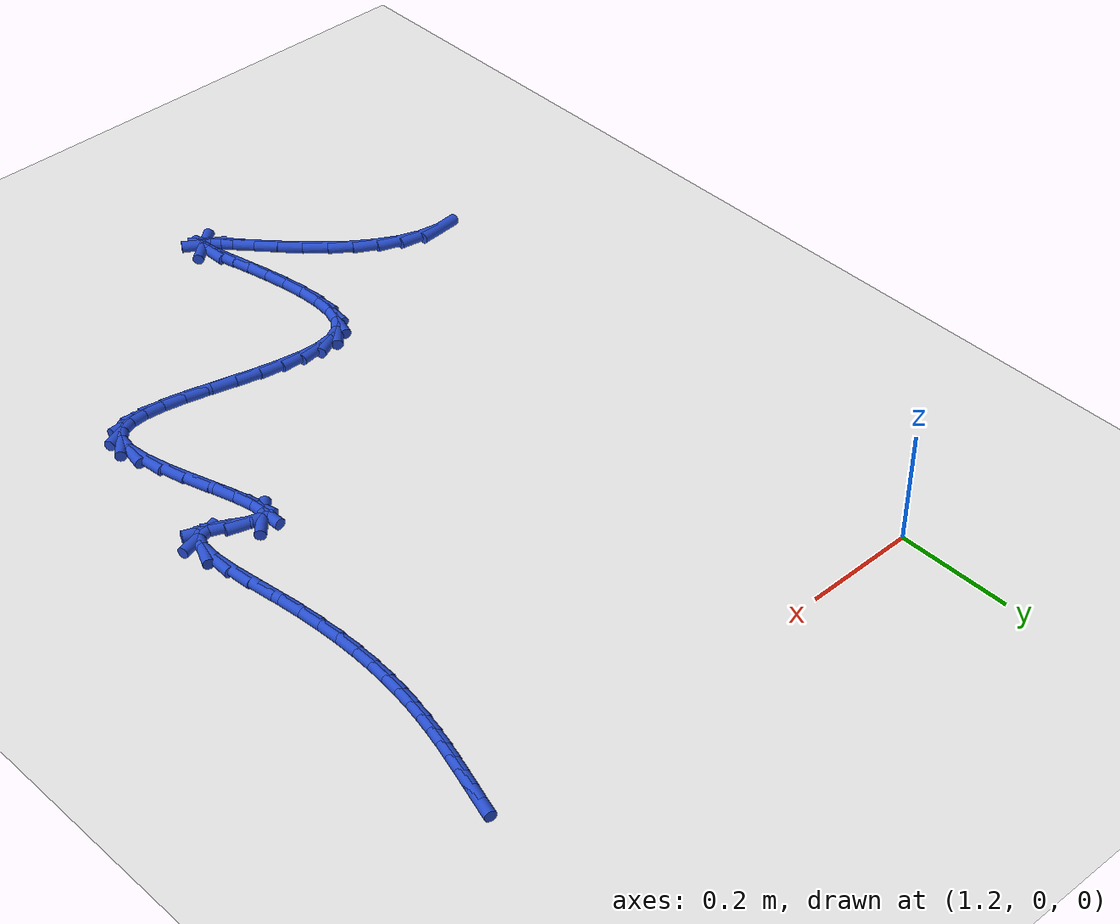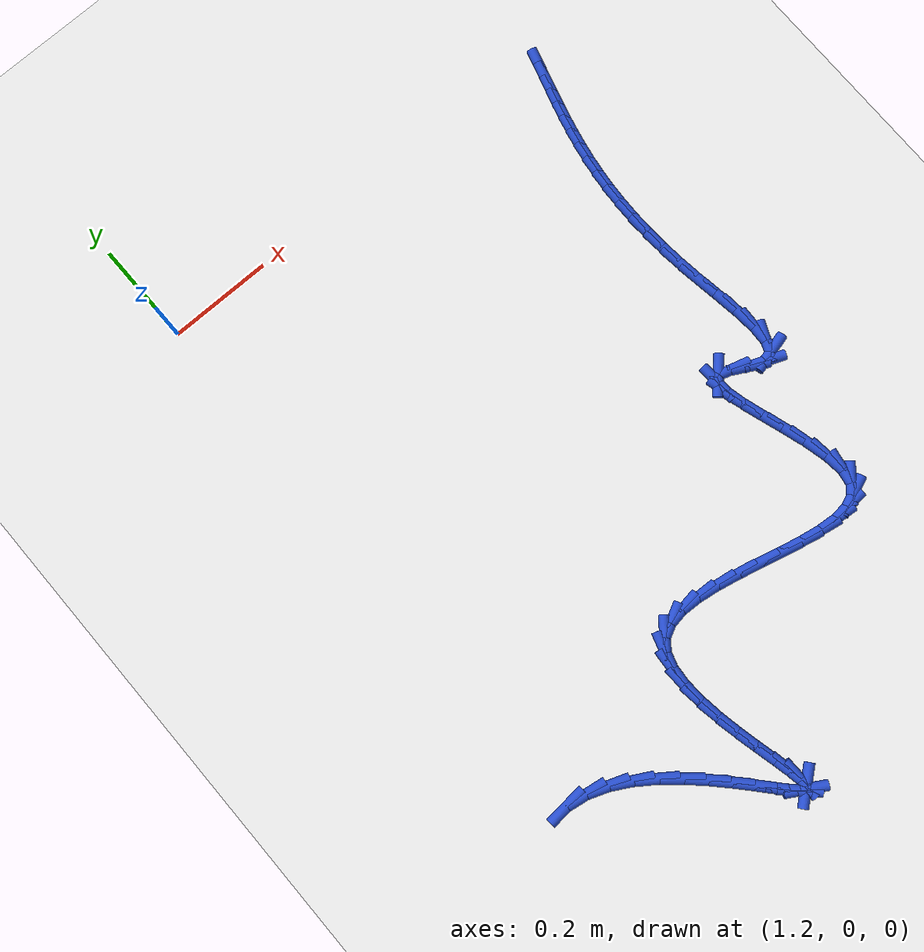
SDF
<sdf version="1.6">
 <world name="default">
  <model name="ground_plane">
   <static>1</static>
   <link name="link">
    <collision name="collision">
     <geometry><plane><normal>0 0 1</normal><size>100 100</size></plane></geometry>
     <surface><friction><ode><mu>100</mu><mu2>50</mu2></ode></friction></surface>
    </collision>
    <visual name="visual">
     <cast_shadows>0</cast_shadows>
     <geometry><plane><normal>0 0 1</normal><size>100 100</size></plane></geometry>
     <material>
      <script><uri>file://media/materials/scripts/gazebo.material</uri><name>Gazebo/WhiteGlow</name></script>
     </material>
    </visual>
   </link>
  </model>
  <model name="line">
   <link name="link_139">
    <pose>2.033391835940656 -0.04655818388977548 0.01 0 1.57 1.2891557442095074</pose>
    <collision name="collision">
     <geometry><cylinder><radius>0.01</radius><length>0.08</length></cylinder></geometry>
    </collision>
    <visual name="visual">
     <material>
      <script><name>Gazebo/Blue</name><uri>file://media/materials/scripts/gazebo.material</uri></script>
     </material>
     <geometry><cylinder><radius>0.01</radius><length>0.08</length></cylinder></geometry>
    </visual>
   </link>
   <link name="link_140">
    <pose>2.0255764674213497 -0.07357000636476695 0.01 0 1.57 1.290283510547208</pose>
    <collision name="collision">
     <geometry><cylinder><radius>0.01</radius><length>0.08</length></cylinder></geometry>
    </collision>
    <visual name="visual">
     <material>
      <script><name>Gazebo/Blue</name><uri>file://media/materials/scripts/gazebo.material</uri></script>
     </material>
     <geometry><cylinder><radius>0.01</radius><length>0.08</length></cylinder></geometry>
    </visual>
   </link>
   <link name="link_141">
    <pose>2.017826408533882 -0.10046969367149312 0.01 0 1.57 1.2983792185208827</pose>
    <collision name="collision">
     <geometry><cylinder><radius>0.01</radius><length>0.08</length></cylinder></geometry>
    </collision>
    <visual name="visual">
     <material>
      <script><name>Gazebo/Blue</name><uri>file://media/materials/scripts/gazebo.material</uri></script>
     </material>
     <geometry><cylinder><radius>0.01</radius><length>0.08</length></cylinder></geometry>
    </visual>
   </link>
   <link name="link_142">
    <pose>2.010281807269411 -0.12747622197752148 0.01 0 1.57 1.3132579747958533</pose>
    <collision name="collision">
     <geometry><cylinder><radius>0.01</radius><length>0.08</length></cylinder></geometry>
    </collision>
    <visual name="visual">
     <material>
      <script><name>Gazebo/Blue</name><uri>file://media/materials/scripts/gazebo.material</uri></script>
     </material>
     <geometry><cylinder><radius>0.01</radius><length>0.08</length></cylinder></geometry>
    </visual>
   </link>
   <link name="link_143">
    <pose>2.003082811619092 -0.1548085674504191 0.01 0 1.57 1.3344805755066462</pose>
    <collision name="collision">
     <geometry><cylinder><radius>0.01</radius><length>0.08</length></cylinder></geometry>
    </collision>
    <visual name="visual">
     <material>
      <script><name>Gazebo/Blue</name><uri>file://media/materials/scripts/gazebo.material</uri></script>
     </material>
     <geometry><cylinder><radius>0.01</radius><length>0.08</length></cylinder></geometry>
    </visual>
   </link>
   <link name="link_144">
    <pose>1.996369569574084 -0.1826857062577532 0.01 0 1.57 1.3613726023500343</pose>
    <collision name="collision">
     <geometry><cylinder><radius>0.01</radius><length>0.08</length></cylinder></geometry>
    </collision>
    <visual name="visual">
     <material>
      <script><name>Gazebo/Blue</name><uri>file://media/materials/scripts/gazebo.material</uri></script>
     </material>
     <geometry><cylinder><radius>0.01</radius><length>0.08</length></cylinder></geometry>
    </visual>
   </link>
   <link name="link_145">
    <pose>1.9902822291255415 -0.21132661456709073 0.01 0 1.57 1.3930619994792948</pose>
    <collision name="collision">
     <geometry><cylinder><radius>0.01</radius><length>0.08</length></cylinder></geometry>
    </collision>
    <visual name="visual">
     <material>
      <script><name>Gazebo/Blue</name><uri>file://media/materials/scripts/gazebo.material</uri></script>
     </material>
     <geometry><cylinder><radius>0.01</radius><length>0.08</length></cylinder></geometry>
    </visual>
   </link>
   <link name="link_146">
    <pose>1.9849609382646225 -0.24095026854599977 0.01 0 1.57 1.4285346954058564</pose>
    <collision name="collision">
     <geometry><cylinder><radius>0.01</radius><length>0.08</length></cylinder></geometry>
    </collision>
    <visual name="visual">
     <material>
      <script><name>Gazebo/Blue</name><uri>file://media/materials/scripts/gazebo.material</uri></script>
     </material>
     <geometry><cylinder><radius>0.01</radius><length>0.08</length></cylinder></geometry>
    </visual>
   </link>
   <link name="link_147">
    <pose>1.980545844982484 -0.2717756443620456 0.01 0 1.57 1.4667039067783092</pose>
    <collision name="collision">
     <geometry><cylinder><radius>0.01</radius><length>0.08</length></cylinder></geometry>
    </collision>
    <visual name="visual">
     <material>
      <script><name>Gazebo/Blue</name><uri>file://media/materials/scripts/gazebo.material</uri></script>
     </material>
     <geometry><cylinder><radius>0.01</radius><length>0.08</length></cylinder></geometry>
    </visual>
   </link>
   <link name="link_148">
    <pose>1.977177097270282 -0.3040217181827961 0.01 0 1.57 1.5064847838088369</pose>
    <collision name="collision">
     <geometry><cylinder><radius>0.01</radius><length>0.08</length></cylinder></geometry>
    </collision>
    <visual name="visual">
     <material>
      <script><name>Gazebo/Blue</name><uri>file://media/materials/scripts/gazebo.material</uri></script>
     </material>
     <geometry><cylinder><radius>0.01</radius><length>0.08</length></cylinder></geometry>
    </visual>
   </link>
   <link name="link_149">
    <pose>1.974994843119174 -0.3379074661758185 0.01 0 1.57 1.5468639267818551</pose>
    <collision name="collision">
     <geometry><cylinder><radius>0.01</radius><length>0.08</length></cylinder></geometry>
    </collision>
    <visual name="visual">
     <material>
      <script><name>Gazebo/Blue</name><uri>file://media/materials/scripts/gazebo.material</uri></script>
     </material>
     <geometry><cylinder><radius>0.01</radius><length>0.08</length></cylinder></geometry>
    </visual>
   </link>
   <link name="link_150">
    <pose>1.9741392305203167 -0.37365186450867993 0.01 0 1.57 -1.5546384463508158</pose>
    <collision name="collision">
     <geometry><cylinder><radius>0.01</radius><length>0.08</length></cylinder></geometry>
    </collision>
    <visual name="visual">
     <material>
      <script><name>Gazebo/Blue</name><uri>file://media/materials/scripts/gazebo.material</uri></script>
     </material>
     <geometry><cylinder><radius>0.01</radius><length>0.08</length></cylinder></geometry>
    </visual>
   </link>
   <link name="link_151">
    <pose>1.974750407464866 -0.41147388934894724 0.01 0 1.57 -1.5155636681429208</pose>
    <collision name="collision">
     <geometry><cylinder><radius>0.01</radius><length>0.08</length></cylinder></geometry>
    </collision>
    <visual name="visual">
     <material>
      <script><name>Gazebo/Blue</name><uri>file://media/materials/scripts/gazebo.material</uri></script>
     </material>
     <geometry><cylinder><radius>0.01</radius><length>0.08</length></cylinder></geometry>
    </visual>
   </link>
   <link name="link_152">
    <pose>1.9769685219439803 -0.4515925168641878 0.01 0 1.57 -1.4780579746204354</pose>
    <collision name="collision">
     <geometry><cylinder><radius>0.01</radius><length>0.08</length></cylinder></geometry>
    </collision>
    <visual name="visual">
     <material>
      <script><name>Gazebo/Blue</name><uri>file://media/materials/scripts/gazebo.material</uri></script>
     </material>
     <geometry><cylinder><radius>0.01</radius><length>0.08</length></cylinder></geometry>
    </visual>
   </link>
   <link name="link_153">
    <pose>1.9809337219488155 -0.4942267232219685 0.01 0 1.57 -1.4425613910180328</pose>
    <collision name="collision">
     <geometry><cylinder><radius>0.01</radius><length>0.08</length></cylinder></geometry>
    </collision>
    <visual name="visual">
     <material>
      <script><name>Gazebo/Blue</name><uri>file://media/materials/scripts/gazebo.material</uri></script>
     </material>
     <geometry><cylinder><radius>0.01</radius><length>0.08</length></cylinder></geometry>
    </visual>
   </link>
   <link name="link_154">
    <pose>1.9867830442494754 -0.5395905282412937 0.01 0 1.57 -1.4195198672755824</pose>
    <collision name="collision">
     <geometry><cylinder><radius>0.01</radius><length>0.08</length></cylinder></geometry>
    </collision>
    <visual name="visual">
     <material>
      <script><name>Gazebo/Blue</name><uri>file://media/materials/scripts/gazebo.material</uri></script>
     </material>
     <geometry><cylinder><radius>0.01</radius><length>0.08</length></cylinder></geometry>
    </visual>
   </link>
   <link name="link_155">
    <pose>1.9939846445289313 -0.5868323868846314 0.01 0 1.57 -1.4295342508097129</pose>
    <collision name="collision">
     <geometry><cylinder><radius>0.01</radius><length>0.08</length></cylinder></geometry>
    </collision>
    <visual name="visual">
     <material>
      <script><name>Gazebo/Blue</name><uri>file://media/materials/scripts/gazebo.material</uri></script>
     </material>
     <geometry><cylinder><radius>0.01</radius><length>0.08</length></cylinder></geometry>
    </visual>
   </link>
   <link name="link_156">
    <pose>2.0005097221185504 -0.632716019203072 0.01 0 1.57 -1.4827428013352417</pose>
    <collision name="collision">
     <geometry><cylinder><radius>0.01</radius><length>0.08</length></cylinder></geometry>
    </collision>
    <visual name="visual">
     <material>
      <script><name>Gazebo/Blue</name><uri>file://media/materials/scripts/gazebo.material</uri></script>
     </material>
     <geometry><cylinder><radius>0.01</radius><length>0.08</length></cylinder></geometry>
    </visual>
   </link>
   <link name="link_157">
    <pose>2.0041262143935894 -0.6736813376214135 0.01 0 1.57 1.5239147201574847</pose>
    <collision name="collision">
     <geometry><cylinder><radius>0.01</radius><length>0.08</length></cylinder></geometry>
    </collision>
    <visual name="visual">
     <material>
      <script><name>Gazebo/Blue</name><uri>file://media/materials/scripts/gazebo.material</uri></script>
     </material>
     <geometry><cylinder><radius>0.01</radius><length>0.08</length></cylinder></geometry>
    </visual>
   </link>
   <link name="link_158">
    <pose>2.002602058729308 -0.706168254564453 0.01 0 1.57 1.160412149462732</pose>
    <collision name="collision">
     <geometry><cylinder><radius>0.01</radius><length>0.08</length></cylinder></geometry>
    </collision>
    <visual name="visual">
     <material>
      <script><name>Gazebo/Blue</name><uri>file://media/materials/scripts/gazebo.material</uri></script>
     </material>
     <geometry><cylinder><radius>0.01</radius><length>0.08</length></cylinder></geometry>
    </visual>
   </link>
   <link name="link_159">
    <pose>1.9937051925009661 -0.7266166824569877 0.01 0 1.57 0.25636298657787354</pose>
    <collision name="collision">
     <geometry><cylinder><radius>0.01</radius><length>0.08</length></cylinder></geometry>
    </collision>
    <visual name="visual">
     <material>
      <script><name>Gazebo/Blue</name><uri>file://media/materials/scripts/gazebo.material</uri></script>
     </material>
     <geometry><cylinder><radius>0.01</radius><length>0.08</length></cylinder></geometry>
    </visual>
   </link>
   <link name="link_160">
    <pose>1.9752035530838208 -0.7314665337238143 0.01 0 1.57 -0.3904399336066739</pose>
    <collision name="collision">
     <geometry><cylinder><radius>0.01</radius><length>0.08</length></cylinder></geometry>
    </collision>
    <visual name="visual">
     <material>
      <script><name>Gazebo/Blue</name><uri>file://media/materials/scripts/gazebo.material</uri></script>
     </material>
     <geometry><cylinder><radius>0.01</radius><length>0.08</length></cylinder></geometry>
    </visual>
   </link>
   <link name="link_161">
    <pose>1.9465937762692913 -0.7196916286025419 0.01 0 1.57 -0.49978428906986494</pose>
    <collision name="collision">
     <geometry><cylinder><radius>0.01</radius><length>0.08</length></cylinder></geometry>
    </collision>
    <visual name="visual">
     <material>
      <script><name>Gazebo/Blue</name><uri>file://media/materials/scripts/gazebo.material</uri></script>
     </material>
     <geometry><cylinder><radius>0.01</radius><length>0.08</length></cylinder></geometry>
    </visual>
   </link>
   <link name="link_162">
    <pose>1.9160813813752349 -0.7030311764826646 0.01 0 1.57 -0.28030339259964454</pose>
    <collision name="collision">
     <geometry><cylinder><radius>0.01</radius><length>0.08</length></cylinder></geometry>
    </collision>
    <visual name="visual">
     <material>
      <script><name>Gazebo/Blue</name><uri>file://media/materials/scripts/gazebo.material</uri></script>
     </material>
     <geometry><cylinder><radius>0.01</radius><length>0.08</length></cylinder></geometry>
    </visual>
   </link>
   <link name="link_163">
    <pose>1.8942577342866598 -0.6967485231153041 0.01 0 1.57 0.8106238926801275</pose>
    <collision name="collision">
     <geometry><cylinder><radius>0.01</radius><length>0.08</length></cylinder></geometry>
    </collision>
    <visual name="visual">
     <material>
      <script><name>Gazebo/Blue</name><uri>file://media/materials/scripts/gazebo.material</uri></script>
     </material>
     <geometry><cylinder><radius>0.01</radius><length>0.08</length></cylinder></geometry>
    </visual>
   </link>
   <link name="link_164">
    <pose>1.8848783399363769 -0.70661347308233 0.01 0 1.57 -1.5447962421317014</pose>
    <collision name="collision">
     <geometry><cylinder><radius>0.01</radius><length>0.08</length></cylinder></geometry>
    </collision>
    <visual name="visual">
     <material>
      <script><name>Gazebo/Blue</name><uri>file://media/materials/scripts/gazebo.material</uri></script>
     </material>
     <geometry><cylinder><radius>0.01</radius><length>0.08</length></cylinder></geometry>
    </visual>
   </link>
   <link name="link_165">
    <pose>1.8854802796561374 -0.7297597083148779 0.01 0 1.57 -1.337679545960382</pose>
    <collision name="collision">
     <geometry><cylinder><radius>0.01</radius><length>0.08</length></cylinder></geometry>
    </collision>
    <visual name="visual">
     <material>
      <script><name>Gazebo/Blue</name><uri>file://media/materials/scripts/gazebo.material</uri></script>
     </material>
     <geometry><cylinder><radius>0.01</radius><length>0.08</length></cylinder></geometry>
    </visual>
   </link>
   <link name="link_166">
    <pose>1.8933741475449515 -0.7630063661510706 0.01 0 1.57 -1.2691719798764611</pose>
    <collision name="collision">
     <geometry><cylinder><radius>0.01</radius><length>0.08</length></cylinder></geometry>
    </collision>
    <visual name="visual">
     <material>
      <script><name>Gazebo/Blue</name><uri>file://media/materials/scripts/gazebo.material</uri></script>
     </material>
     <geometry><cylinder><radius>0.01</radius><length>0.08</length></cylinder></geometry>
    </visual>
   </link>
   <link name="link_167">
    <pose>1.9058705377018283 -0.8031725839290305 0.01 0 1.57 -1.253674645752367</pose>
    <collision name="collision">
     <geometry><cylinder><radius>0.01</radius><length>0.08</length></cylinder></geometry>
    </collision>
    <visual name="visual">
     <material>
      <script><name>Gazebo/Blue</name><uri>file://media/materials/scripts/gazebo.material</uri></script>
     </material>
     <geometry><cylinder><radius>0.01</radius><length>0.08</length></cylinder></geometry>
    </visual>
   </link>
   <link name="link_168">
    <pose>1.9202800442257777 -0.8470774989868798 0.01 0 1.57 -1.273276256946485</pose>
    <collision name="collision">
     <geometry><cylinder><radius>0.01</radius><length>0.08</length></cylinder></geometry>
    </collision>
    <visual name="visual">
     <material>
      <script><name>Gazebo/Blue</name><uri>file://media/materials/scripts/gazebo.material</uri></script>
     </material>
     <geometry><cylinder><radius>0.01</radius><length>0.08</length></cylinder></geometry>
    </visual>
   </link>
   <link name="link_169">
    <pose>1.9339132612158094 -0.8915402486627413 0.01 0 1.57 -1.3324060833883455</pose>
    <collision name="collision">
     <geometry><cylinder><radius>0.01</radius><length>0.08</length></cylinder></geometry>
    </collision>
    <visual name="visual">
     <material>
      <script><name>Gazebo/Blue</name><uri>file://media/materials/scripts/gazebo.material</uri></script>
     </material>
     <geometry><cylinder><radius>0.01</radius><length>0.08</length></cylinder></geometry>
    </visual>
   </link>
   <link name="link_170">
    <pose>1.944080782770933 -0.9333799702947374 0.01 0 1.57 -1.4599077837427716</pose>
    <collision name="collision">
     <geometry><cylinder><radius>0.01</radius><length>0.08</length></cylinder></geometry>
    </collision>
    <visual name="visual">
     <material>
      <script><name>Gazebo/Blue</name><uri>file://media/materials/scripts/gazebo.material</uri></script>
     </material>
     <geometry><cylinder><radius>0.01</radius><length>0.08</length></cylinder></geometry>
    </visual>
   </link>
   <link name="link_171">
    <pose>1.9480932029901585 -0.9694158012209905 0.01 0 1.57 1.3985007052232998</pose>
    <collision name="collision">
     <geometry><cylinder><radius>0.01</radius><length>0.08</length></cylinder></geometry>
    </collision>
    <visual name="visual">
     <material>
      <script><name>Gazebo/Blue</name><uri>file://media/materials/scripts/gazebo.material</uri></script>
     </material>
     <geometry><cylinder><radius>0.01</radius><length>0.08</length></cylinder></geometry>
    </visual>
   </link>
   <link name="link_172">
    <pose>1.9433650007198633 -0.9965860948060805 0.01 0 1.57 0.8961139991353118</pose>
    <collision name="collision">
     <geometry><cylinder><radius>0.01</radius><length>0.08</length></cylinder></geometry>
    </collision>
    <visual name="visual">
     <material>
      <script><name>Gazebo/Blue</name><uri>file://media/materials/scripts/gazebo.material</uri></script>
     </material>
     <geometry><cylinder><radius>0.01</radius><length>0.08</length></cylinder></geometry>
    </visual>
   </link>
   <link name="link_173">
    <pose>1.9293239067214156 -1.0141395714284678 0.01 0 1.57 0.39746737122572867</pose>
    <collision name="collision">
     <geometry><cylinder><radius>0.01</radius><length>0.08</length></cylinder></geometry>
    </collision>
    <visual name="visual">
     <material>
      <script><name>Gazebo/Blue</name><uri>file://media/materials/scripts/gazebo.material</uri></script>
     </material>
     <geometry><cylinder><radius>0.01</radius><length>0.08</length></cylinder></geometry>
    </visual>
   </link>
   <link name="link_174">
    <pose>1.9072217829718872 -1.0234182874065196 0.01 0 1.57 0.08375782046588635</pose>
    <collision name="collision">
     <geometry><cylinder><radius>0.01</radius><length>0.08</length></cylinder></geometry>
    </collision>
    <visual name="visual">
     <material>
      <script><name>Gazebo/Blue</name><uri>file://media/materials/scripts/gazebo.material</uri></script>
     </material>
     <geometry><cylinder><radius>0.01</radius><length>0.08</length></cylinder></geometry>
    </visual>
   </link>
   <link name="link_175">
    <pose>1.8783764366331903 -1.0258399764135606 0.01 0 1.57 -0.08782535281016143</pose>
    <collision name="collision">
     <geometry><cylinder><radius>0.01</radius><length>0.08</length></cylinder></geometry>
    </collision>
    <visual name="visual">
     <material>
      <script><name>Gazebo/Blue</name><uri>file://media/materials/scripts/gazebo.material</uri></script>
     </material>
     <geometry><cylinder><radius>0.01</radius><length>0.08</length></cylinder></geometry>
    </visual>
   </link>
   <link name="link_176">
    <pose>1.8441056748672375 -1.022822372122915 0.01 0 1.57 -0.18139866266339555</pose>
    <collision name="collision">
     <geometry><cylinder><radius>0.01</radius><length>0.08</length></cylinder></geometry>
    </collision>
    <visual name="visual">
     <material>
      <script><name>Gazebo/Blue</name><uri>file://media/materials/scripts/gazebo.material</uri></script>
     </material>
     <geometry><cylinder><radius>0.01</radius><length>0.08</length></cylinder></geometry>
    </visual>
   </link>
   <link name="link_177">
    <pose>1.8057273048359428 -1.0157832082079068 0.01 0 1.57 -0.2300860280375042</pose>
    <collision name="collision">
     <geometry><cylinder><radius>0.01</radius><length>0.08</length></cylinder></geometry>
    </collision>
    <visual name="visual">
     <material>
      <script><name>Gazebo/Blue</name><uri>file://media/materials/scripts/gazebo.material</uri></script>
     </material>
     <geometry><cylinder><radius>0.01</radius><length>0.08</length></cylinder></geometry>
    </visual>
   </link>
   <link name="link_178">
    <pose>1.76455913370122 -1.0061402183418604 0.01 0 1.57 -0.24870632907864465</pose>
    <collision name="collision">
     <geometry><cylinder><radius>0.01</radius><length>0.08</length></cylinder></geometry>
    </collision>
    <visual name="visual">
     <material>
      <script><name>Gazebo/Blue</name><uri>file://media/materials/scripts/gazebo.material</uri></script>
     </material>
     <geometry><cylinder><radius>0.01</radius><length>0.08</length></cylinder></geometry>
    </visual>
   </link>
   <link name="link_179">
    <pose>1.7219189686249798 -0.9953111361980987 0.01 0 1.57 -0.2427528975757483</pose>
    <collision name="collision">
     <geometry><cylinder><radius>0.01</radius><length>0.08</length></cylinder></geometry>
    </collision>
    <visual name="visual">
     <material>
      <script><name>Gazebo/Blue</name><uri>file://media/materials/scripts/gazebo.material</uri></script>
     </material>
     <geometry><cylinder><radius>0.01</radius><length>0.08</length></cylinder></geometry>
    </visual>
   </link>
   <link name="link_180">
    <pose>1.6791246167691378 -0.984713695449947 0.01 0 1.57 -0.2117178059174256</pose>
    <collision name="collision">
     <geometry><cylinder><radius>0.01</radius><length>0.08</length></cylinder></geometry>
    </collision>
    <visual name="visual">
     <material>
      <script><name>Gazebo/Blue</name><uri>file://media/materials/scripts/gazebo.material</uri></script>
     </material>
     <geometry><cylinder><radius>0.01</radius><length>0.08</length></cylinder></geometry>
    </visual>
   </link>
   <link name="link_181">
    <pose>1.6374938852956045 -0.9757656297707287 0.01 0 1.57 -0.14910381315708854</pose>
    <collision name="collision">
     <geometry><cylinder><radius>0.01</radius><length>0.08</length></cylinder></geometry>
    </collision>
    <visual name="visual">
     <material>
      <script><name>Gazebo/Blue</name><uri>file://media/materials/scripts/gazebo.material</uri></script>
     </material>
     <geometry><cylinder><radius>0.01</radius><length>0.08</length></cylinder></geometry>
    </visual>
   </link>
   <link name="link_182">
    <pose>1.5983445813662962 -0.9698846728337679 0.01 0 1.57 -0.03947345384149524</pose>
    <collision name="collision">
     <geometry><cylinder><radius>0.01</radius><length>0.08</length></cylinder></geometry>
    </collision>
    <visual name="visual">
     <material>
      <script><name>Gazebo/Blue</name><uri>file://media/materials/scripts/gazebo.material</uri></script>
     </material>
     <geometry><cylinder><radius>0.01</radius><length>0.08</length></cylinder></geometry>
    </visual>
   </link>
   <link name="link_183">
    <pose>1.5629945121431243 -0.9684885583123892 0.01 0 1.57 0.1479681277248736</pose>
    <collision name="collision">
     <geometry><cylinder><radius>0.01</radius><length>0.08</length></cylinder></geometry>
    </collision>
    <visual name="visual">
     <material>
      <script><name>Gazebo/Blue</name><uri>file://media/materials/scripts/gazebo.material</uri></script>
     </material>
     <geometry><cylinder><radius>0.01</radius><length>0.08</length></cylinder></geometry>
    </visual>
   </link>
   <link name="link_184">
    <pose>1.5327614847880024 -0.9729950198799163 0.01 0 1.57 0.4612136176419111</pose>
    <collision name="collision">
     <geometry><cylinder><radius>0.01</radius><length>0.08</length></cylinder></geometry>
    </collision>
    <visual name="visual">
     <material>
      <script><name>Gazebo/Blue</name><uri>file://media/materials/scripts/gazebo.material</uri></script>
     </material>
     <geometry><cylinder><radius>0.01</radius><length>0.08</length></cylinder></geometry>
    </visual>
   </link>
   <link name="link_185">
    <pose>1.508963306462844 -0.9848217912096733 0.01 0 1.57 0.9003860367007951</pose>
    <collision name="collision">
     <geometry><cylinder><radius>0.01</radius><length>0.08</length></cylinder></geometry>
    </collision>
    <visual name="visual">
     <material>
      <script><name>Gazebo/Blue</name><uri>file://media/materials/scripts/gazebo.material</uri></script>
     </material>
     <geometry><cylinder><radius>0.01</radius><length>0.08</length></cylinder></geometry>
    </visual>
   </link>
   <link name="link_186">
    <pose>1.4927885602343554 -1.005220698034318 0.01 0 1.57 1.2679014491670753</pose>
    <collision name="collision">
     <geometry><cylinder><radius>0.01</radius><length>0.08</length></cylinder></geometry>
    </collision>
    <visual name="visual">
     <material>
      <script><name>Gazebo/Blue</name><uri>file://media/materials/scripts/gazebo.material</uri></script>
     </material>
     <geometry><cylinder><radius>0.01</radius><length>0.08</length></cylinder></geometry>
    </visual>
   </link>
   <link name="link_187">
    <pose>1.4839398109273603 -1.0335357003288772 0.01 0 1.57 1.4903026482610557</pose>
    <collision name="collision">
     <geometry><cylinder><radius>0.01</radius><length>0.08</length></cylinder></geometry>
    </collision>
    <visual name="visual">
     <material>
      <script><name>Gazebo/Blue</name><uri>file://media/materials/scripts/gazebo.material</uri></script>
     </material>
     <geometry><cylinder><radius>0.01</radius><length>0.08</length></cylinder></geometry>
    </visual>
   </link>
   <link name="link_188">
    <pose>1.4811685442165512 -1.0678896887085376 0.01 0 1.57 -1.5177965293139026</pose>
    <collision name="collision">
     <geometry><cylinder><radius>0.01</radius><length>0.08</length></cylinder></geometry>
    </collision>
    <visual name="visual">
     <material>
      <script><name>Gazebo/Blue</name><uri>file://media/materials/scripts/gazebo.material</uri></script>
     </material>
     <geometry><cylinder><radius>0.01</radius><length>0.08</length></cylinder></geometry>
    </visual>
   </link>
   <link name="link_189">
    <pose>1.4832107342971357 -1.106385638945097 0.01 0 1.57 -1.434400118756552</pose>
    <collision name="collision">
     <geometry><cylinder><radius>0.01</radius><length>0.08</length></cylinder></geometry>
    </collision>
    <visual name="visual">
     <material>
      <script><name>Gazebo/Blue</name><uri>file://media/materials/scripts/gazebo.material</uri></script>
     </material>
     <geometry><cylinder><radius>0.01</radius><length>0.08</length></cylinder></geometry>
    </visual>
   </link>
   <link name="link_190">
    <pose>1.4888023553643215 -1.1471265268103537 0.01 0 1.57 -1.3813870108702637</pose>
    <collision name="collision">
     <geometry><cylinder><radius>0.01</radius><length>0.08</length></cylinder></geometry>
    </collision>
    <visual name="visual">
     <material>
      <script><name>Gazebo/Blue</name><uri>file://media/materials/scripts/gazebo.material</uri></script>
     </material>
     <geometry><cylinder><radius>0.01</radius><length>0.08</length></cylinder></geometry>
    </visual>
   </link>
   <link name="link_191">
    <pose>1.4966793816133146 -1.1882153280761016 0.01 0 1.57 -1.3494343353293499</pose>
    <collision name="collision">
     <geometry><cylinder><radius>0.01</radius><length>0.08</length></cylinder></geometry>
    </collision>
    <visual name="visual">
     <material>
      <script><name>Gazebo/Blue</name><uri>file://media/materials/scripts/gazebo.material</uri></script>
     </material>
     <geometry><cylinder><radius>0.01</radius><length>0.08</length></cylinder></geometry>
    </visual>
   </link>
   <link name="link_192">
    <pose>1.5055777872393221 -1.2277550185141397 0.01 0 1.57 -1.3354267175433854</pose>
    <collision name="collision">
     <geometry><cylinder><radius>0.01</radius><length>0.08</length></cylinder></geometry>
    </collision>
    <visual name="visual">
     <material>
      <script><name>Gazebo/Blue</name><uri>file://media/materials/scripts/gazebo.material</uri></script>
     </material>
     <geometry><cylinder><radius>0.01</radius><length>0.08</length></cylinder></geometry>
    </visual>
   </link>
   <link name="link_193">
    <pose>1.5142335464375518 -1.2638485738962646 0.01 0 1.57 -1.3423665724738654</pose>
    <collision name="collision">
     <geometry><cylinder><radius>0.01</radius><length>0.08</length></cylinder></geometry>
    </collision>
    <visual name="visual">
     <material>
      <script><name>Gazebo/Blue</name><uri>file://media/materials/scripts/gazebo.material</uri></script>
     </material>
     <geometry><cylinder><radius>0.01</radius><length>0.08</length></cylinder></geometry>
    </visual>
   </link>
   <link name="link_194">
    <pose>1.5213826334032108 -1.2945989699942733 0.01 0 1.57 -1.3866721538831401</pose>
    <collision name="collision">
     <geometry><cylinder><radius>0.01</radius><length>0.08</length></cylinder></geometry>
    </collision>
    <visual name="visual">
     <material>
      <script><name>Gazebo/Blue</name><uri>file://media/materials/scripts/gazebo.material</uri></script>
     </material>
     <geometry><cylinder><radius>0.01</radius><length>0.08</length></cylinder></geometry>
    </visual>
   </link>
   <link name="link_195">
    <pose>1.525761022331506 -1.318109182579964 0.01 0 1.57 -1.5468904268069368</pose>
    <collision name="collision">
     <geometry><cylinder><radius>0.01</radius><length>0.08</length></cylinder></geometry>
    </collision>
    <visual name="visual">
     <material>
      <script><name>Gazebo/Blue</name><uri>file://media/materials/scripts/gazebo.material</uri></script>
     </material>
     <geometry><cylinder><radius>0.01</radius><length>0.08</length></cylinder></geometry>
    </visual>
   </link>
   <link name="link_196">
    <pose>1.526104687417644 -1.3324821874251325 0.01 0 1.57 0.6874561432204168</pose>
    <collision name="collision">
     <geometry><cylinder><radius>0.01</radius><length>0.08</length></cylinder></geometry>
    </collision>
    <visual name="visual">
     <material>
      <script><name>Gazebo/Blue</name><uri>file://media/materials/scripts/gazebo.material</uri></script>
     </material>
     <geometry><cylinder><radius>0.01</radius><length>0.08</length></cylinder></geometry>
    </visual>
   </link>
   <link name="link_197">
    <pose>1.52139865347919 -1.33634616306826 0.01 0 1.57 -0.532455818165285</pose>
    <collision name="collision">
     <geometry><cylinder><radius>0.01</radius><length>0.08</length></cylinder></geometry>
    </collision>
    <visual name="visual">
     <material>
      <script><name>Gazebo/Blue</name><uri>file://media/materials/scripts/gazebo.material</uri></script>
     </material>
     <geometry><cylinder><radius>0.01</radius><length>0.08</length></cylinder></geometry>
    </visual>
   </link>
   <link name="link_198">
    <pose>1.5117272824091266 -1.3306475913231273 0.01 0 1.57 -0.7648476584775356</pose>
    <collision name="collision">
     <geometry><cylinder><radius>0.01</radius><length>0.08</length></cylinder></geometry>
    </collision>
    <visual name="visual">
     <material>
      <script><name>Gazebo/Blue</name><uri>file://media/materials/scripts/gazebo.material</uri></script>
     </material>
     <geometry><cylinder><radius>0.01</radius><length>0.08</length></cylinder></geometry>
    </visual>
   </link>
   <link name="link_199">
    <pose>1.4974781685843797 -1.3169724165272705 0.01 0 1.57 -0.8276158308136611</pose>
    <collision name="collision">
     <geometry><cylinder><radius>0.01</radius><length>0.08</length></cylinder></geometry>
    </collision>
    <visual name="visual">
     <material>
      <script><name>Gazebo/Blue</name><uri>file://media/materials/scripts/gazebo.material</uri></script>
     </material>
     <geometry><cylinder><radius>0.01</radius><length>0.08</length></cylinder></geometry>
    </visual>
   </link>
   <link name="link_200">
    <pose>1.4790389161105317 -1.296906603534205 0.01 0 1.57 -0.8411368549505638</pose>
    <collision name="collision">
     <geometry><cylinder><radius>0.01</radius><length>0.08</length></cylinder></geometry>
    </collision>
    <visual name="visual">
     <material>
      <script><name>Gazebo/Blue</name><uri>file://media/materials/scripts/gazebo.material</uri></script>
     </material>
     <geometry><cylinder><radius>0.01</radius><length>0.08</length></cylinder></geometry>
    </visual>
   </link>
   <link name="link_201">
    <pose>1.4567971290931654 -1.2720361171974441 0.01 0 1.57 -0.8306261340805488</pose>
    <collision name="collision">
     <geometry><cylinder><radius>0.01</radius><length>0.08</length></cylinder></geometry>
    </collision>
    <visual name="visual">
     <material>
      <script><name>Gazebo/Blue</name><uri>file://media/materials/scripts/gazebo.material</uri></script>
     </material>
     <geometry><cylinder><radius>0.01</radius><length>0.08</length></cylinder></geometry>
    </visual>
   </link>
   <link name="link_202">
    <pose>1.4311404116378623 -1.2439469223705029 0.01 0 1.57 -0.8031666420021876</pose>
    <collision name="collision">
     <geometry><cylinder><radius>0.01</radius><length>0.08</length></cylinder></geometry>
    </collision>
    <visual name="visual">
     <material>
      <script><name>Gazebo/Blue</name><uri>file://media/materials/scripts/gazebo.material</uri></script>
     </material>
     <geometry><cylinder><radius>0.01</radius><length>0.08</length></cylinder></geometry>
    </visual>
   </link>
   <link name="link_203">
    <pose>1.4024563678502053 -1.2142249839068948 0.01 0 1.57 -0.7599496470988512</pose>
    <collision name="collision">
     <geometry><cylinder><radius>0.01</radius><length>0.08</length></cylinder></geometry>
    </collision>
    <visual name="visual">
     <material>
      <script><name>Gazebo/Blue</name><uri>file://media/materials/scripts/gazebo.material</uri></script>
     </material>
     <geometry><cylinder><radius>0.01</radius><length>0.08</length></cylinder></geometry>
    </visual>
   </link>
   <link name="link_204">
    <pose>1.371132601835777 -1.1844562666601353 0.01 0 1.57 -0.6991099746653924</pose>
    <collision name="collision">
     <geometry><cylinder><radius>0.01</radius><length>0.08</length></cylinder></geometry>
    </collision>
    <visual name="visual">
     <material>
      <script><name>Gazebo/Blue</name><uri>file://media/materials/scripts/gazebo.material</uri></script>
     </material>
     <geometry><cylinder><radius>0.01</radius><length>0.08</length></cylinder></geometry>
    </visual>
   </link>
   <link name="link_205">
    <pose>1.3375567177001593 -1.1562267354837374 0.01 0 1.57 -0.6163113090057544</pose>
    <collision name="collision">
     <geometry><cylinder><radius>0.01</radius><length>0.08</length></cylinder></geometry>
    </collision>
    <visual name="visual">
     <material>
      <script><name>Gazebo/Blue</name><uri>file://media/materials/scripts/gazebo.material</uri></script>
     </material>
     <geometry><cylinder><radius>0.01</radius><length>0.08</length></cylinder></geometry>
    </visual>
   </link>
   <link name="link_206">
    <pose>1.302116319548934 -1.131122355231216 0.01 0 1.57 -0.5046869320372592</pose>
    <collision name="collision">
     <geometry><cylinder><radius>0.01</radius><length>0.08</length></cylinder></geometry>
    </collision>
    <visual name="visual">
     <material>
      <script><name>Gazebo/Blue</name><uri>file://media/materials/scripts/gazebo.material</uri></script>
     </material>
     <geometry><cylinder><radius>0.01</radius><length>0.08</length></cylinder></geometry>
    </visual>
   </link>
   <link name="link_207">
    <pose>1.2651990114876843 -1.1107290907560854 0.01 0 1.57 -0.35516046027115256</pose>
    <collision name="collision">
     <geometry><cylinder><radius>0.01</radius><length>0.08</length></cylinder></geometry>
    </collision>
    <visual name="visual">
     <material>
      <script><name>Gazebo/Blue</name><uri>file://media/materials/scripts/gazebo.material</uri></script>
     </material>
     <geometry><cylinder><radius>0.01</radius><length>0.08</length></cylinder></geometry>
    </visual>
   </link>
   <link name="link_208">
    <pose>1.2271923976219907 -1.096632906911859 0.01 0 1.57 -0.15915417053962105</pose>
    <collision name="collision">
     <geometry><cylinder><radius>0.01</radius><length>0.08</length></cylinder></geometry>
    </collision>
    <visual name="visual">
     <material>
      <script><name>Gazebo/Blue</name><uri>file://media/materials/scripts/gazebo.material</uri></script>
     </material>
     <geometry><cylinder><radius>0.01</radius><length>0.08</length></cylinder></geometry>
    </visual>
   </link>
   <link name="link_209">
    <pose>1.1884840820574378 -1.0904197685520525 0.01 0 1.57 0.07610237396062705</pose>
    <collision name="collision">
     <geometry><cylinder><radius>0.01</radius><length>0.08</length></cylinder></geometry>
    </collision>
    <visual name="visual">
     <material>
      <script><name>Gazebo/Blue</name><uri>file://media/materials/scripts/gazebo.material</uri></script>
     </material>
     <geometry><cylinder><radius>0.01</radius><length>0.08</length></cylinder></geometry>
    </visual>
   </link>
  </model>
 </world>
</sdf>
